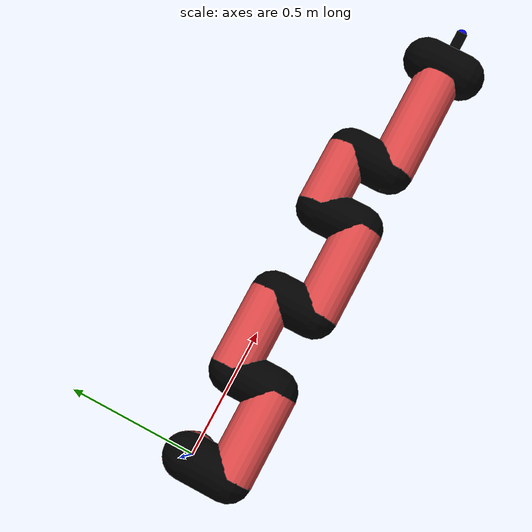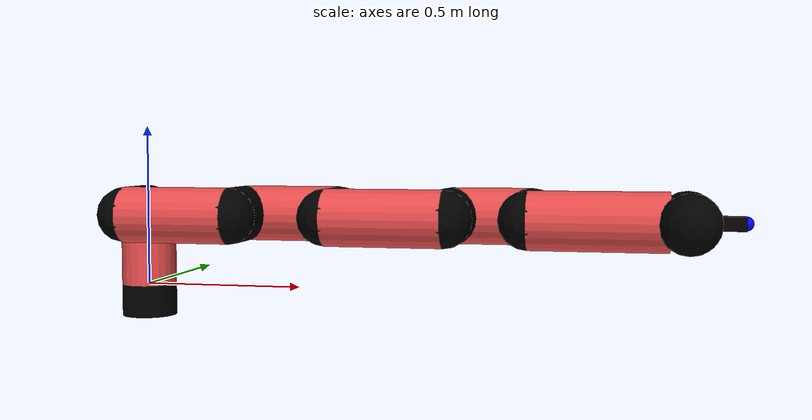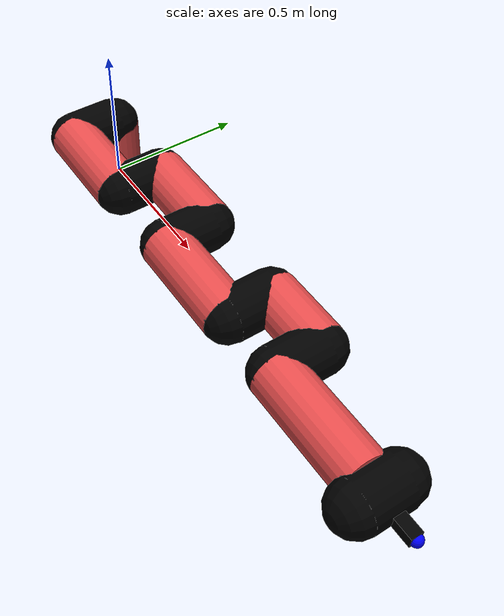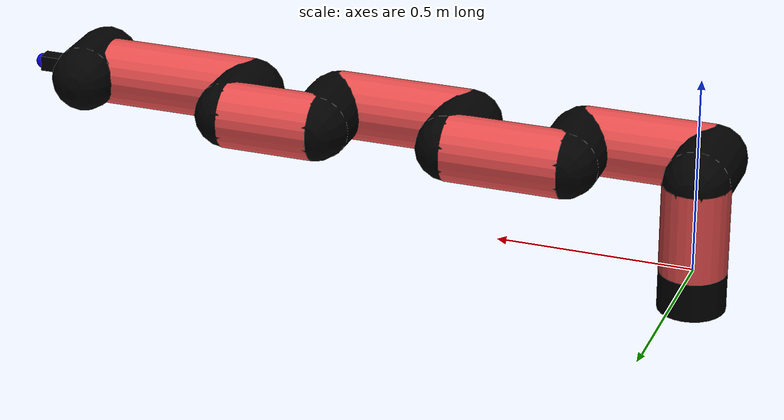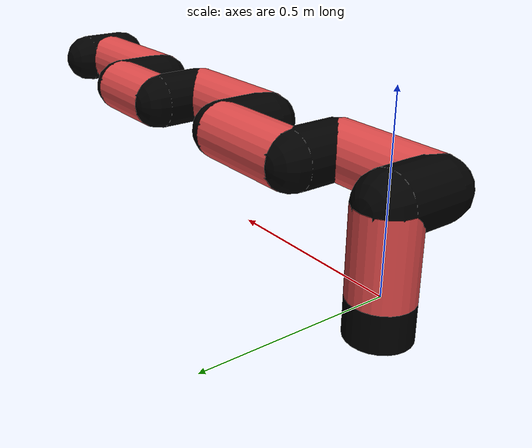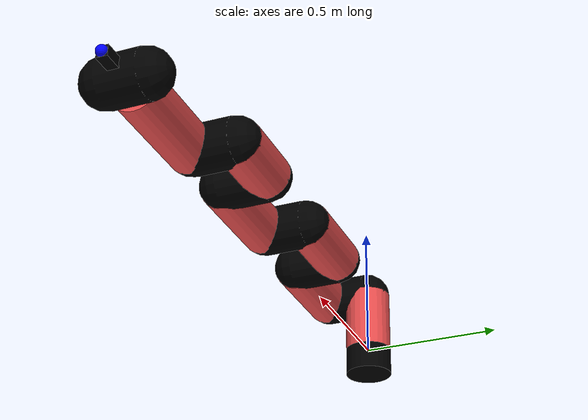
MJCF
<mujoco model="manipulator">
		<compiler angle="degree" coordinate="local" inertiafromgeom="auto" meshdir="meshes/"/>
		<option gravity="0 0 0" integrator="RK4" iterations="30" timestep="0.01"/>

		<default>
		<joint armature="1" limited="true" stiffness="10" damping="15" frictionloss="5.0"/>
		<geom conaffinity="1" condim="3" contype="1" friction=".5 .1 .1" margin="0.002"/>
		<motor ctrllimited="true"/>
		<position ctrllimited="true"/>
		</default>

		<asset>
		<texture builtin="gradient" height="100" rgb1="1.0 1.0 1.0" rgb2="1.0 1.0 1.0" type="skybox" width="100"/>
		<texture builtin="flat" height="32" name="arm_tex" rgb1="0.9 0.3 0.3" type="2d" width="32"/>
		<texture builtin="flat" height="32" name="gripper_tex" rgb1="0.0 0.0 0.0" type="cube" width="32"/>

		<material name="arm_mat" shininess="0.1" specular="0.1" texture="arm_tex"/>
		<material name="gripper_mat" shininess="1" specular="1" texture="gripper_tex"/>
		</asset>

		<worldbody>
		<light cutoff="45" diffuse=".8 .8 .8" dir="0 0.16 -1" directional="false" name="light" pos="0 -2.0 8.0" specular="0.3 0.3 0.3"/>

		<body name="base_link" pos="0 0 -0.1">
		<geom fromto="0 0 0 0 0 0.1" material="arm_mat" name="base_link" rgba="0.0 0.0 0.0 1" size="0.085" type="cylinder"/>
		</body>

		<body name="l1" pos="0 0 0">
<geom fromto="0 0 0 0 0 0.23" material="arm_mat" name="l1" rgba="0.9 0.3 0.3 1" size="0.085" type="cylinder"/>
<geom fromto="0 0 0.23 0 -0.16 0.23" material="arm_mat" name="l1_ex" rgba="0.0 0.0 0.0 1" size="0.085" type="capsule"/>
<joint axis="0 0 1" name="j1" pos="0 0 0" range="-90 90" damping="22.98" frictionloss="13.09"/>

<body name="l2" pos="0 -0.16 0.23">
<geom fromto="0 0 0 0.33 0 0" material="arm_mat" name="l2" rgba="0.9 0.3 0.3 1" size="0.085" type="cylinder"/>
<geom fromto="0.33 0 0 0.33 0.16 0" material="arm_mat" name="l2_ex" rgba="0.0 0.0 0.0 1" size="0.085" type="capsule"/>
<joint axis="0.0 1.0 0.0" name="j2" pos="0 0 0" range="-90 60" damping="37.94" frictionloss="10.19"/>

<body name="l3" pos="0.33 0.16 0">
<geom fromto="0 0 0 0.3 0 0" material="arm_mat" name="l3" rgba="0.9 0.3 0.3 1" size="0.085" type="cylinder"/>
<geom fromto="0.3 0 0 0.3 -0.16 0" material="arm_mat" name="l3_ex" rgba="0.0 0.0 0.0 1" size="0.085" type="capsule"/>
<joint axis="0.0 1.0 0.0" name="j3" pos="0 0 0" range="-30 60" damping="35.68" frictionloss="7.35"/>

<body name="l4" pos="0.3 -0.16 0">
<geom fromto="0 0 0 0.35 0 0" material="arm_mat" name="l4" rgba="0.9 0.3 0.3 1" size="0.085" type="cylinder"/>
<geom fromto="0.35 0 0 0.35 0.16 0" material="arm_mat" name="l4_ex" rgba="0.0 0.0 0.0 1" size="0.085" type="capsule"/>
<joint axis="0.0 1.0 0.0" name="j4" pos="0 0 0" range="-30 60" damping="37.56" frictionloss="8.16"/>

<body name="l5" pos="0.35 0.16 0">
<geom fromto="0 0 0 0.24 0 0" material="arm_mat" name="l5" rgba="0.9 0.3 0.3 1" size="0.085" type="cylinder"/>
<geom fromto="0.24 0 0 0.24 -0.16 0" material="arm_mat" name="l5_ex" rgba="0.0 0.0 0.0 1" size="0.085" type="capsule"/>
<joint axis="0.0 1.0 0.0" name="j5" pos="0 0 0" range="-30 60" damping="31.47" frictionloss="7.38"/>

<body name="l6" pos="0.24 -0.16 0">
<geom fromto="0 0 0 0.39 0 0" material="arm_mat" name="l6" rgba="0.9 0.3 0.3 1" size="0.085" type="cylinder"/>
<joint axis="0.0 1.0 0.0" name="j6" pos="0 0 0" range="-30 60" damping="25.91" frictionloss="7.78"/>

<body name="gripper" pos="0.39 0 0">
<geom fromto="0.05 -0.07 0 0.05 0.07 0" material="gripper_mat" name="gripper" rgba="0.0 0.0 0.0 1" size="0.085" type="capsule"/><joint axis="1 0 0" name="j7" pos="0 0 0" range="-90 90" damping="15" frictionloss="5.0"/><body name="finger" pos="0.1 0 0">
<geom fromto="0 0.0 0 0.1 0.0 0" material="gripper_mat" name="finger" rgba="0.0 0.0 0.0 1" size="0.020 0.06 0.06" type="box"/>
</body>
<site name="current" pos="0.2 0. 0.0" rgba="0. 0. 1.0 1" size="0.02" type="sphere"/>
</body>
</body>
</body>
</body>
</body>
</body>
</body>
</worldbody>
<actuator>
<motor ctrllimited="true" ctrlrange="-1.0 1.0" joint="j1" gear="65.22"/>
<motor ctrllimited="true" ctrlrange="-1.0 1.0" joint="j2" gear="71.57"/>
<motor ctrllimited="true" ctrlrange="-1.0 1.0" joint="j3" gear="89.8"/>
<motor ctrllimited="true" ctrlrange="-1.0 1.0" joint="j4" gear="87.02"/>
<motor ctrllimited="true" ctrlrange="-1.0 1.0" joint="j5" gear="98.55"/>
<motor ctrllimited="true" ctrlrange="-1.0 1.0" joint="j6" gear="109.68"/>
<motor ctrllimited="true" ctrlrange="-1.0 1.0" joint="j7" gear="80"/>
</actuator>
</mujoco>
